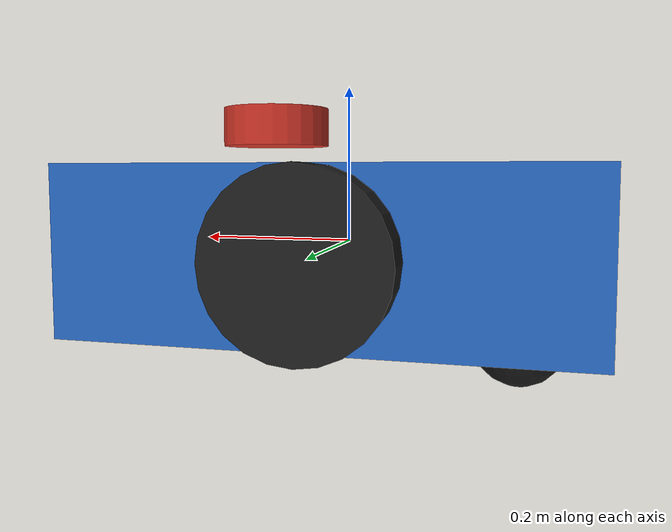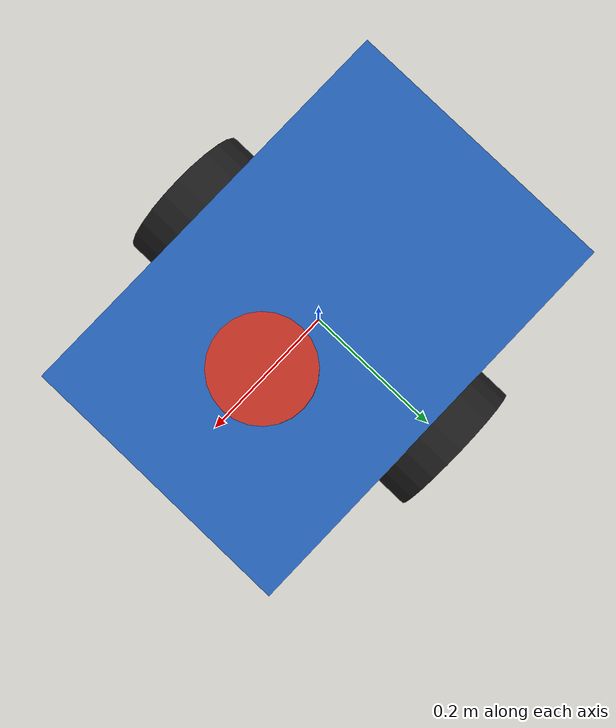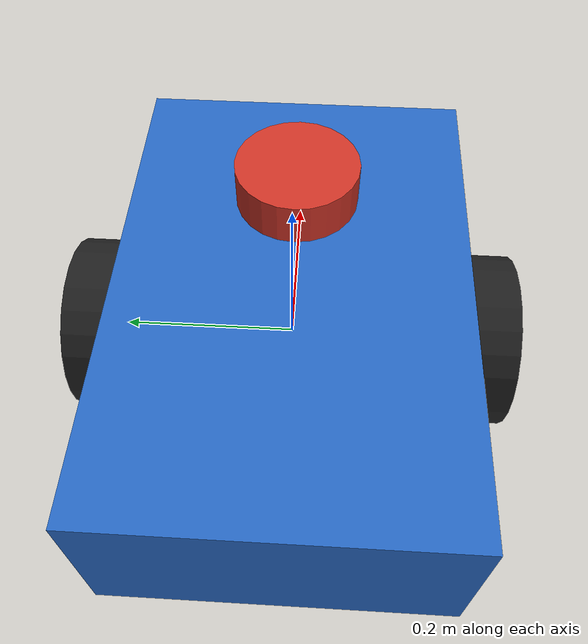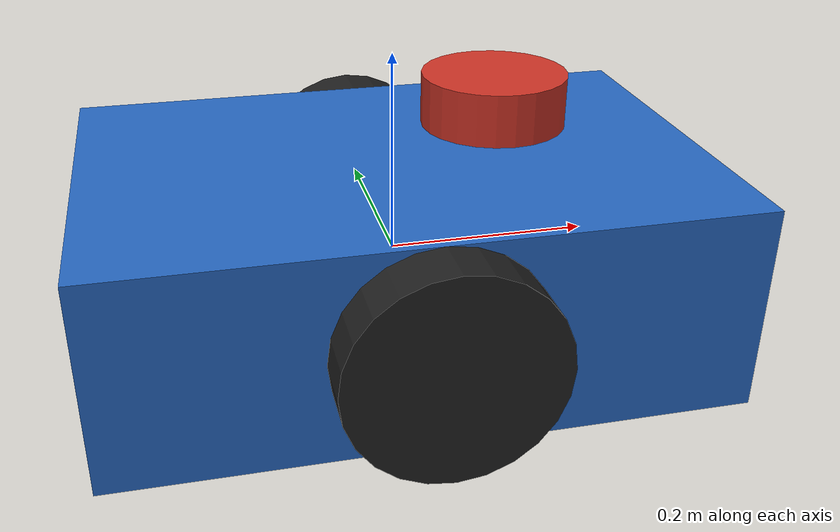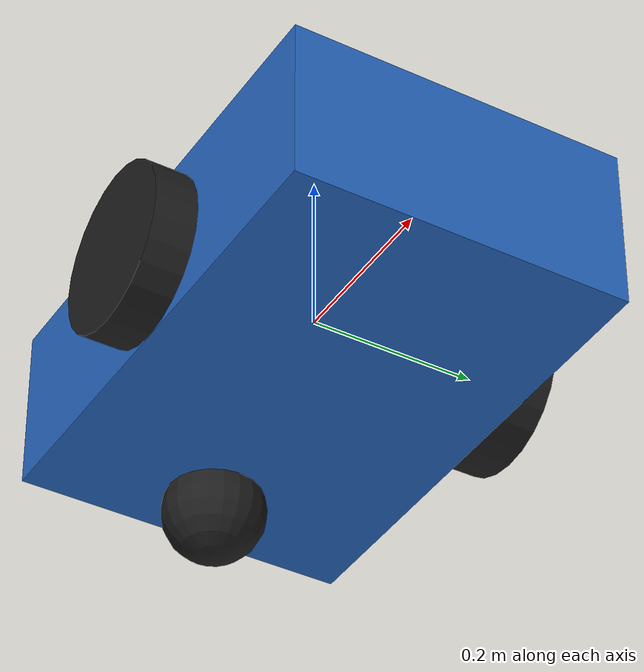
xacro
<?xml version="1.0"?>
<robot xmlns:xacro="http://www.ros.org/wiki/xacro" name="my_robot">
  <!-- Dimensions are in metres; joint angles are in radians. -->
  <xacro:property name="base_length" value="0.6"/>
  <xacro:property name="base_width" value="0.4"/>
  <xacro:property name="base_height" value="0.2"/>
  <xacro:property name="wheel_radius" value="0.1"/>
  <xacro:property name="wheel_width" value="0.05"/>
  <xacro:property name="wheel_y" value="${(base_width + wheel_width) / 2}"/>
  <xacro:property name="caster_radius" value="0.06"/>
  <xacro:property name="laser_radius" value="0.07"/>
  <xacro:property name="laser_height" value="0.05"/>

  <material name="chassis_blue"><color rgba="0.15 0.4 0.75 1"/></material>
  <material name="wheel_dark"><color rgba="0.12 0.12 0.12 1"/></material>
  <material name="sensor_red"><color rgba="0.8 0.2 0.15 1"/></material>

  <link name="base_link">
    <visual>
      <origin xyz="0 0 0" rpy="0 0 0"/>
      <geometry><box size="${base_length} ${base_width} ${base_height}"/></geometry>
      <material name="chassis_blue"/>
    </visual>
  </link>

  <xacro:macro name="wheel" params="name y_position">
    <link name="${name}_wheel_link">
      <visual>
        <!-- URDF cylinders point along Z; rotate geometry onto the Y axle. -->
        <origin xyz="0 0 0" rpy="${pi / 2} 0 0"/>
        <geometry><cylinder radius="${wheel_radius}" length="${wheel_width}"/></geometry>
        <material name="wheel_dark"/>
      </visual>
    </link>
    <joint name="${name}_wheel_joint" type="continuous">
      <parent link="base_link"/>
      <child link="${name}_wheel_link"/>
      <origin xyz="0 ${y_position} 0" rpy="0 0 0"/>
      <axis xyz="0 1 0"/>
    </joint>
  </xacro:macro>
  <xacro:wheel name="left" y_position="${wheel_y}"/>
  <xacro:wheel name="right" y_position="${-wheel_y}"/>

  <link name="caster_link">
    <visual>
      <geometry><sphere radius="${caster_radius}"/></geometry>
      <material name="wheel_dark"/>
    </visual>
  </link>
  <joint name="caster_joint" type="fixed">
    <parent link="base_link"/>
    <child link="caster_link"/>
    <origin xyz="-0.22 0 -0.12" rpy="0 0 0"/>
  </joint>

  <link name="laser_link">
    <visual>
      <geometry><cylinder radius="${laser_radius}" length="${laser_height}"/></geometry>
      <material name="sensor_red"/>
    </visual>
  </link>
  <joint name="laser_joint" type="fixed">
    <parent link="base_link"/>
    <child link="laser_link"/>
    <origin xyz="0.10 0 0.15" rpy="0 0 0"/>
  </joint>
</robot>
